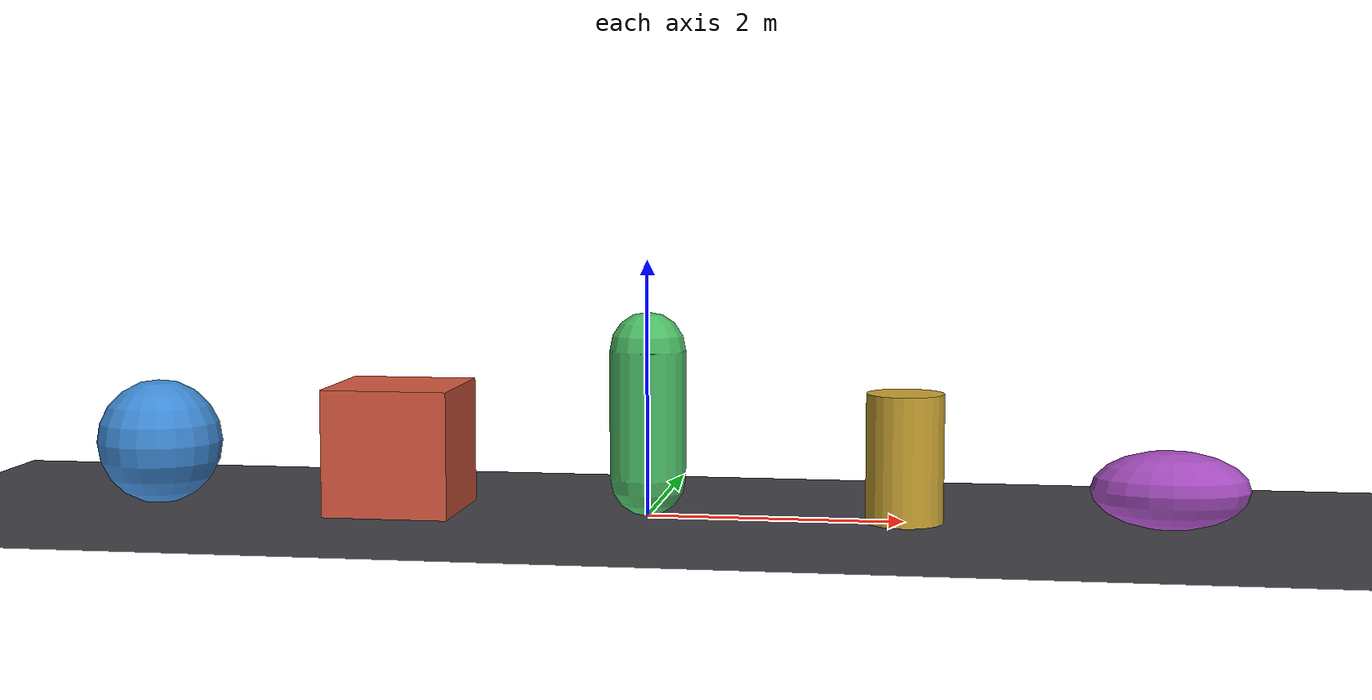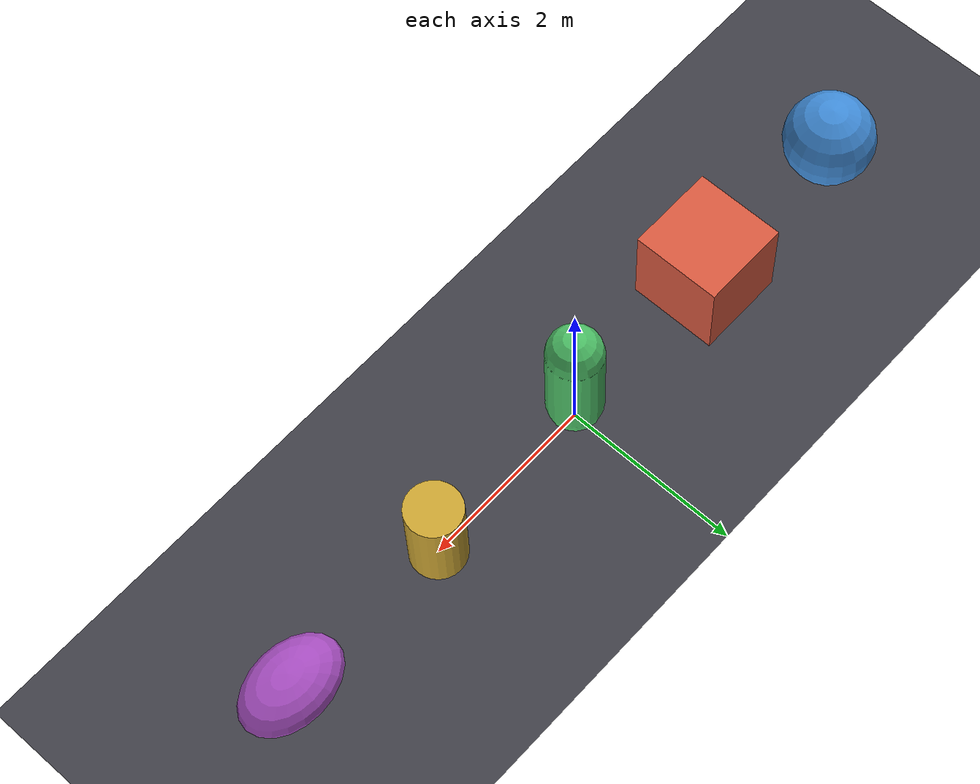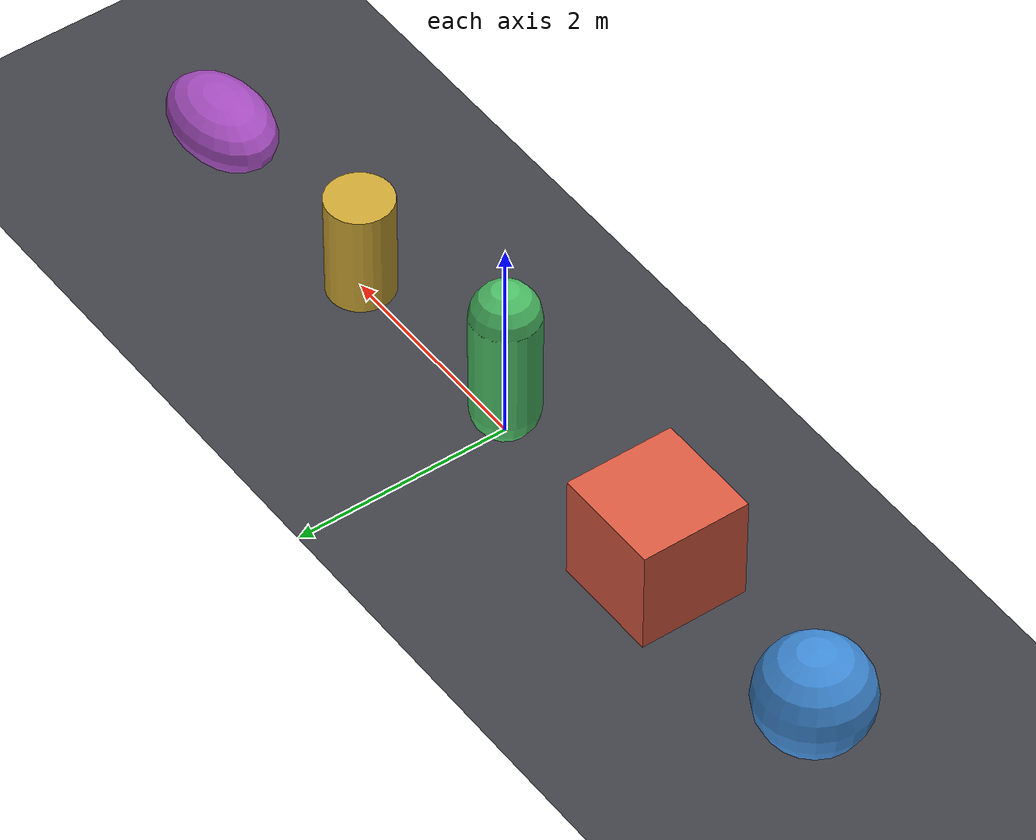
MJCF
<mujoco model="basic-shapes">
  <option gravity="0 0 0" timestep="0.002"/>
  <worldbody>
    <geom name="sphere"    type="sphere"    pos="-4 0 0.5" size="0.5"
          rgba="0.25 0.55 0.85 1"/>
    <geom name="box"       type="box"       pos="-2 0 0.5" size="0.5 0.5 0.5"
          rgba="0.85 0.35 0.25 1"/>
    <geom name="capsule"   type="capsule"   pos=" 0 0 0.8" size="0.3 0.5"
          rgba="0.30 0.75 0.40 1"/>
    <geom name="cylinder"  type="cylinder"  pos=" 2 0 0.5" size="0.3 0.5"
          rgba="0.80 0.65 0.20 1"/>
    <geom name="ellipsoid" type="ellipsoid"  pos=" 4 0 0.3" size="0.6 0.4 0.3"
          rgba="0.65 0.30 0.75 1"/>
    <geom name="ground"    type="plane"     size="6 2 0.01"
          rgba="0.25 0.25 0.28 1"/>
  </worldbody>
</mujoco>
